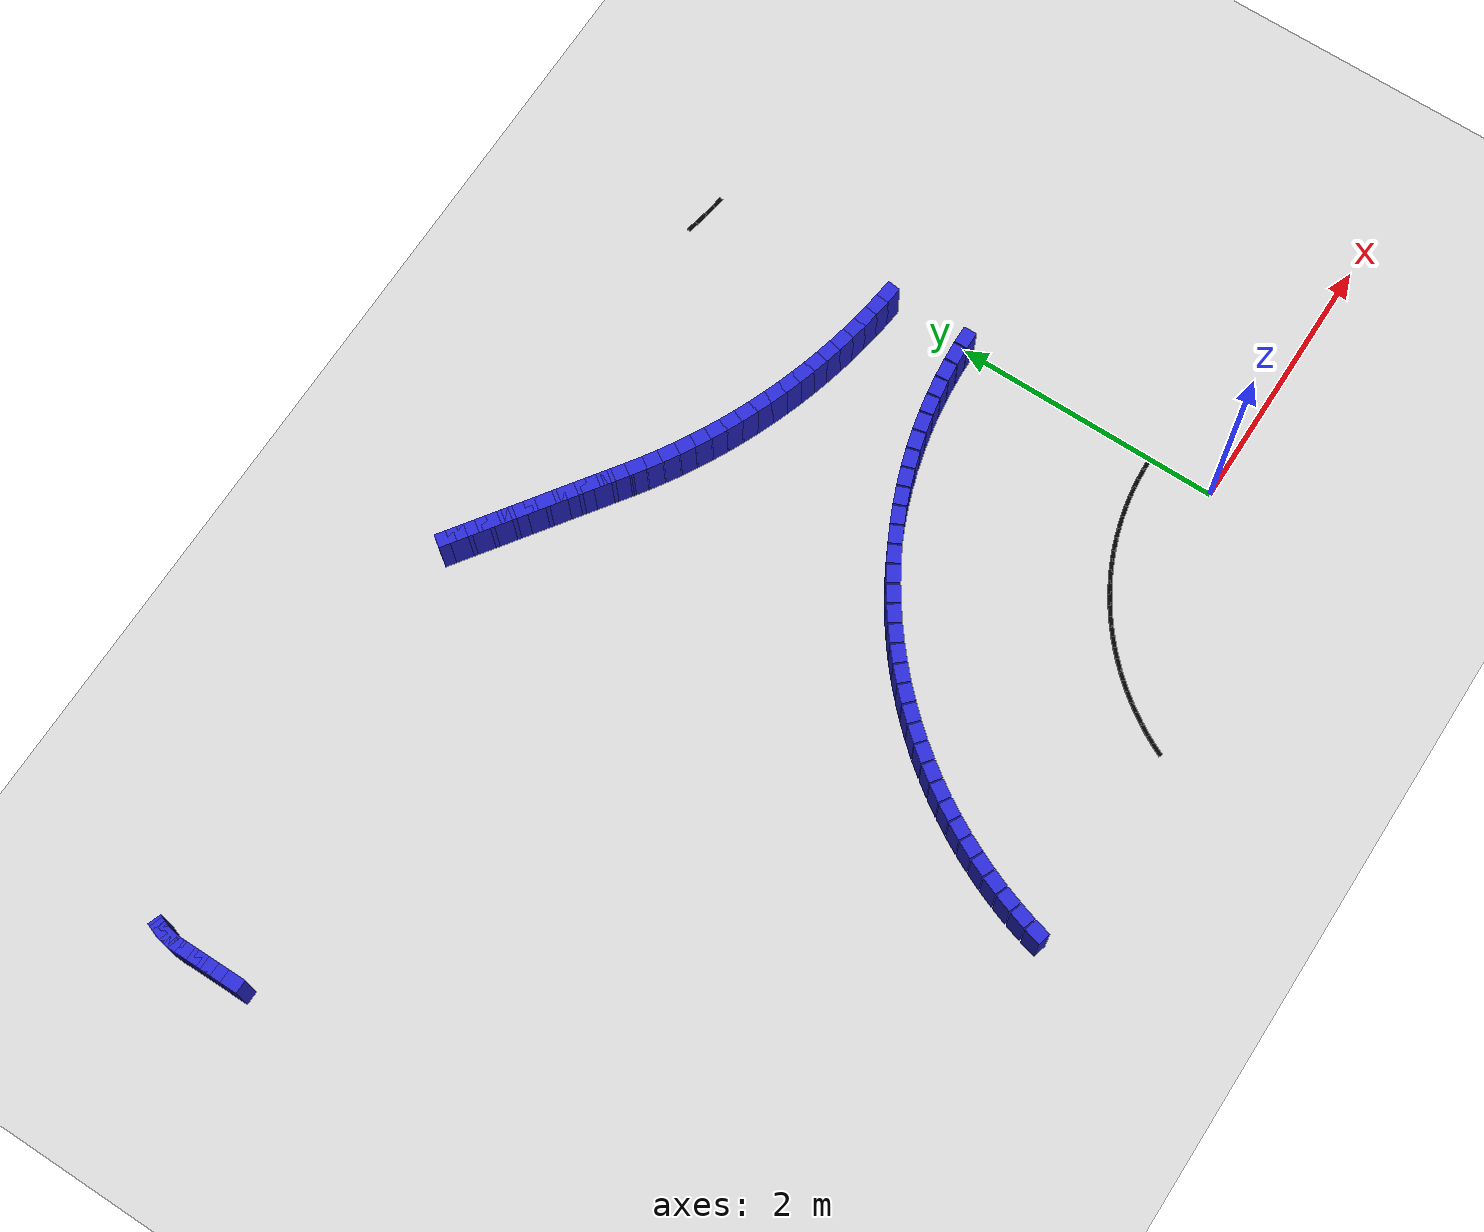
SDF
<sdf version="1.6">
 <world name="new_race_track">
  <include><uri>model://ground_plane</uri></include>
  <include><uri>model://sun</uri></include>
  <model name="iw_190">
   <static>true</static>
   <pose>-3.3803 -0.6142 0.200 0 0 1.3090</pose>
   <link name="l">
    <collision name="c"><geometry><box><size>0.1305 0.1 0.4</size></box></geometry></collision>
    <visual name="v">
     <geometry><box><size>0.1305 0.1 0.4</size></box></geometry>
     <material><ambient>0.15 0.15 0.8 1</ambient><diffuse>0.15 0.15 0.8 1</diffuse></material>
    </visual>
   </link>
  </model>
  <model name="iw_191">
   <static>true</static>
   <pose>-3.3411 -0.4789 0.200 0 0 1.2687</pose>
   <link name="l">
    <collision name="c"><geometry><box><size>0.1305 0.1 0.4</size></box></geometry></collision>
    <visual name="v">
     <geometry><box><size>0.1305 0.1 0.4</size></box></geometry>
     <material><ambient>0.15 0.15 0.8 1</ambient><diffuse>0.15 0.15 0.8 1</diffuse></material>
    </visual>
   </link>
  </model>
  <model name="iw_192">
   <static>true</static>
   <pose>-3.2965 -0.3452 0.200 0 0 1.2284</pose>
   <link name="l">
    <collision name="c"><geometry><box><size>0.1305 0.1 0.4</size></box></geometry></collision>
    <visual name="v">
     <geometry><box><size>0.1305 0.1 0.4</size></box></geometry>
     <material><ambient>0.15 0.15 0.8 1</ambient><diffuse>0.15 0.15 0.8 1</diffuse></material>
    </visual>
   </link>
  </model>
  <model name="iw_193">
   <static>true</static>
   <pose>-3.2465 -0.2134 0.200 0 0 1.1882</pose>
   <link name="l">
    <collision name="c"><geometry><box><size>0.1305 0.1 0.4</size></box></geometry></collision>
    <visual name="v">
     <geometry><box><size>0.1305 0.1 0.4</size></box></geometry>
     <material><ambient>0.15 0.15 0.8 1</ambient><diffuse>0.15 0.15 0.8 1</diffuse></material>
    </visual>
   </link>
  </model>
  <model name="iw_194">
   <static>true</static>
   <pose>-3.1913 -0.0837 0.200 0 0 1.1479</pose>
   <link name="l">
    <collision name="c"><geometry><box><size>0.1305 0.1 0.4</size></box></geometry></collision>
    <visual name="v">
     <geometry><box><size>0.1305 0.1 0.4</size></box></geometry>
     <material><ambient>0.15 0.15 0.8 1</ambient><diffuse>0.15 0.15 0.8 1</diffuse></material>
    </visual>
   </link>
  </model>
  <model name="iw_195">
   <static>true</static>
   <pose>-3.1309 0.0436 0.200 0 0 1.1076</pose>
   <link name="l">
    <collision name="c"><geometry><box><size>0.1305 0.1 0.4</size></box></geometry></collision>
    <visual name="v">
     <geometry><box><size>0.1305 0.1 0.4</size></box></geometry>
     <material><ambient>0.15 0.15 0.8 1</ambient><diffuse>0.15 0.15 0.8 1</diffuse></material>
    </visual>
   </link>
  </model>
  <model name="iw_196">
   <static>true</static>
   <pose>-3.0654 0.1684 0.200 0 0 1.0673</pose>
   <link name="l">
    <collision name="c"><geometry><box><size>0.1305 0.1 0.4</size></box></geometry></collision>
    <visual name="v">
     <geometry><box><size>0.1305 0.1 0.4</size></box></geometry>
     <material><ambient>0.15 0.15 0.8 1</ambient><diffuse>0.15 0.15 0.8 1</diffuse></material>
    </visual>
   </link>
  </model>
  <model name="iw_197">
   <static>true</static>
   <pose>-2.9949 0.2905 0.200 0 0 1.0271</pose>
   <link name="l">
    <collision name="c"><geometry><box><size>0.1305 0.1 0.4</size></box></geometry></collision>
    <visual name="v">
     <geometry><box><size>0.1305 0.1 0.4</size></box></geometry>
     <material><ambient>0.15 0.15 0.8 1</ambient><diffuse>0.15 0.15 0.8 1</diffuse></material>
    </visual>
   </link>
  </model>
  <model name="iw_198">
   <static>true</static>
   <pose>-2.9196 0.4096 0.200 0 0 0.9868</pose>
   <link name="l">
    <collision name="c"><geometry><box><size>0.1305 0.1 0.4</size></box></geometry></collision>
    <visual name="v">
     <geometry><box><size>0.1305 0.1 0.4</size></box></geometry>
     <material><ambient>0.15 0.15 0.8 1</ambient><diffuse>0.15 0.15 0.8 1</diffuse></material>
    </visual>
   </link>
  </model>
  <model name="iw_199">
   <static>true</static>
   <pose>-2.8395 0.5256 0.200 0 0 0.9465</pose>
   <link name="l">
    <collision name="c"><geometry><box><size>0.1305 0.1 0.4</size></box></geometry></collision>
    <visual name="v">
     <geometry><box><size>0.1305 0.1 0.4</size></box></geometry>
     <material><ambient>0.15 0.15 0.8 1</ambient><diffuse>0.15 0.15 0.8 1</diffuse></material>
    </visual>
   </link>
  </model>
  <model name="iw_200">
   <static>true</static>
   <pose>-2.7548 0.6383 0.200 0 0 0.9062</pose>
   <link name="l">
    <collision name="c"><geometry><box><size>0.1305 0.1 0.4</size></box></geometry></collision>
    <visual name="v">
     <geometry><box><size>0.1305 0.1 0.4</size></box></geometry>
     <material><ambient>0.15 0.15 0.8 1</ambient><diffuse>0.15 0.15 0.8 1</diffuse></material>
    </visual>
   </link>
  </model>
  <model name="iw_201">
   <static>true</static>
   <pose>-2.6657 0.7474 0.200 0 0 0.8660</pose>
   <link name="l">
    <collision name="c"><geometry><box><size>0.1305 0.1 0.4</size></box></geometry></collision>
    <visual name="v">
     <geometry><box><size>0.1305 0.1 0.4</size></box></geometry>
     <material><ambient>0.15 0.15 0.8 1</ambient><diffuse>0.15 0.15 0.8 1</diffuse></material>
    </visual>
   </link>
  </model>
  <model name="iw_202">
   <static>true</static>
   <pose>-2.5722 0.8529 0.200 0 0 0.8257</pose>
   <link name="l">
    <collision name="c"><geometry><box><size>0.1305 0.1 0.4</size></box></geometry></collision>
    <visual name="v">
     <geometry><box><size>0.1305 0.1 0.4</size></box></geometry>
     <material><ambient>0.15 0.15 0.8 1</ambient><diffuse>0.15 0.15 0.8 1</diffuse></material>
    </visual>
   </link>
  </model>
  <model name="iw_203">
   <static>true</static>
   <pose>-2.4746 0.9546 0.200 0 0 0.7854</pose>
   <link name="l">
    <collision name="c"><geometry><box><size>0.1305 0.1 0.4</size></box></geometry></collision>
    <visual name="v">
     <geometry><box><size>0.1305 0.1 0.4</size></box></geometry>
     <material><ambient>0.15 0.15 0.8 1</ambient><diffuse>0.15 0.15 0.8 1</diffuse></material>
    </visual>
   </link>
  </model>
  <model name="iw_204">
   <static>true</static>
   <pose>-2.3729 1.0522 0.200 0 0 0.7451</pose>
   <link name="l">
    <collision name="c"><geometry><box><size>0.1305 0.1 0.4</size></box></geometry></collision>
    <visual name="v">
     <geometry><box><size>0.1305 0.1 0.4</size></box></geometry>
     <material><ambient>0.15 0.15 0.8 1</ambient><diffuse>0.15 0.15 0.8 1</diffuse></material>
    </visual>
   </link>
  </model>
  <model name="iw_205">
   <static>true</static>
   <pose>-2.2674 1.1457 0.200 0 0 0.7048</pose>
   <link name="l">
    <collision name="c"><geometry><box><size>0.1305 0.1 0.4</size></box></geometry></collision>
    <visual name="v">
     <geometry><box><size>0.1305 0.1 0.4</size></box></geometry>
     <material><ambient>0.15 0.15 0.8 1</ambient><diffuse>0.15 0.15 0.8 1</diffuse></material>
    </visual>
   </link>
  </model>
  <model name="iw_206">
   <static>true</static>
   <pose>-2.1583 1.2348 0.200 0 0 0.6646</pose>
   <link name="l">
    <collision name="c"><geometry><box><size>0.1305 0.1 0.4</size></box></geometry></collision>
    <visual name="v">
     <geometry><box><size>0.1305 0.1 0.4</size></box></geometry>
     <material><ambient>0.15 0.15 0.8 1</ambient><diffuse>0.15 0.15 0.8 1</diffuse></material>
    </visual>
   </link>
  </model>
  <model name="iw_207">
   <static>true</static>
   <pose>-2.0456 1.3195 0.200 0 0 0.6243</pose>
   <link name="l">
    <collision name="c"><geometry><box><size>0.1305 0.1 0.4</size></box></geometry></collision>
    <visual name="v">
     <geometry><box><size>0.1305 0.1 0.4</size></box></geometry>
     <material><ambient>0.15 0.15 0.8 1</ambient><diffuse>0.15 0.15 0.8 1</diffuse></material>
    </visual>
   </link>
  </model>
  <model name="iw_208">
   <static>true</static>
   <pose>-1.9296 1.3996 0.200 0 0 0.5840</pose>
   <link name="l">
    <collision name="c"><geometry><box><size>0.1305 0.1 0.4</size></box></geometry></collision>
    <visual name="v">
     <geometry><box><size>0.1305 0.1 0.4</size></box></geometry>
     <material><ambient>0.15 0.15 0.8 1</ambient><diffuse>0.15 0.15 0.8 1</diffuse></material>
    </visual>
   </link>
  </model>
  <model name="iw_209">
   <static>true</static>
   <pose>-1.8105 1.4749 0.200 0 0 0.5437</pose>
   <link name="l">
    <collision name="c"><geometry><box><size>0.1305 0.1 0.4</size></box></geometry></collision>
    <visual name="v">
     <geometry><box><size>0.1305 0.1 0.4</size></box></geometry>
     <material><ambient>0.15 0.15 0.8 1</ambient><diffuse>0.15 0.15 0.8 1</diffuse></material>
    </visual>
   </link>
  </model>
  <model name="iw_210">
   <static>true</static>
   <pose>-1.6884 1.5454 0.200 0 0 0.5035</pose>
   <link name="l">
    <collision name="c"><geometry><box><size>0.1305 0.1 0.4</size></box></geometry></collision>
    <visual name="v">
     <geometry><box><size>0.1305 0.1 0.4</size></box></geometry>
     <material><ambient>0.15 0.15 0.8 1</ambient><diffuse>0.15 0.15 0.8 1</diffuse></material>
    </visual>
   </link>
  </model>
  <model name="iw_211">
   <static>true</static>
   <pose>-1.5636 1.6109 0.200 0 0 0.4632</pose>
   <link name="l">
    <collision name="c"><geometry><box><size>0.1305 0.1 0.4</size></box></geometry></collision>
    <visual name="v">
     <geometry><box><size>0.1305 0.1 0.4</size></box></geometry>
     <material><ambient>0.15 0.15 0.8 1</ambient><diffuse>0.15 0.15 0.8 1</diffuse></material>
    </visual>
   </link>
  </model>
  <model name="iw_212">
   <static>true</static>
   <pose>-1.4363 1.6713 0.200 0 0 0.4229</pose>
   <link name="l">
    <collision name="c"><geometry><box><size>0.1305 0.1 0.4</size></box></geometry></collision>
    <visual name="v">
     <geometry><box><size>0.1305 0.1 0.4</size></box></geometry>
     <material><ambient>0.15 0.15 0.8 1</ambient><diffuse>0.15 0.15 0.8 1</diffuse></material>
    </visual>
   </link>
  </model>
  <model name="iw_213">
   <static>true</static>
   <pose>-1.3066 1.7265 0.200 0 0 0.3826</pose>
   <link name="l">
    <collision name="c"><geometry><box><size>0.1305 0.1 0.4</size></box></geometry></collision>
    <visual name="v">
     <geometry><box><size>0.1305 0.1 0.4</size></box></geometry>
     <material><ambient>0.15 0.15 0.8 1</ambient><diffuse>0.15 0.15 0.8 1</diffuse></material>
    </visual>
   </link>
  </model>
  <model name="iw_214">
   <static>true</static>
   <pose>-1.1748 1.7765 0.200 0 0 0.3424</pose>
   <link name="l">
    <collision name="c"><geometry><box><size>0.1305 0.1 0.4</size></box></geometry></collision>
    <visual name="v">
     <geometry><box><size>0.1305 0.1 0.4</size></box></geometry>
     <material><ambient>0.15 0.15 0.8 1</ambient><diffuse>0.15 0.15 0.8 1</diffuse></material>
    </visual>
   </link>
  </model>
  <model name="iw_215">
   <static>true</static>
   <pose>-1.0411 1.8211 0.200 0 0 0.3021</pose>
   <link name="l">
    <collision name="c"><geometry><box><size>0.1305 0.1 0.4</size></box></geometry></collision>
    <visual name="v">
     <geometry><box><size>0.1305 0.1 0.4</size></box></geometry>
     <material><ambient>0.15 0.15 0.8 1</ambient><diffuse>0.15 0.15 0.8 1</diffuse></material>
    </visual>
   </link>
  </model>
  <model name="iw_216">
   <static>true</static>
   <pose>-0.9058 1.8603 0.200 0 0 0.2618</pose>
   <link name="l">
    <collision name="c"><geometry><box><size>0.1305 0.1 0.4</size></box></geometry></collision>
    <visual name="v">
     <geometry><box><size>0.1305 0.1 0.4</size></box></geometry>
     <material><ambient>0.15 0.15 0.8 1</ambient><diffuse>0.15 0.15 0.8 1</diffuse></material>
    </visual>
   </link>
  </model>
  <model name="iw_217">
   <static>true</static>
   <pose>-0.7689 1.8941 0.200 0 0 0.2215</pose>
   <link name="l">
    <collision name="c"><geometry><box><size>0.1305 0.1 0.4</size></box></geometry></collision>
    <visual name="v">
     <geometry><box><size>0.1305 0.1 0.4</size></box></geometry>
     <material><ambient>0.15 0.15 0.8 1</ambient><diffuse>0.15 0.15 0.8 1</diffuse></material>
    </visual>
   </link>
  </model>
  <model name="iw_218">
   <static>true</static>
   <pose>-0.6308 1.9223 0.200 0 0 0.1812</pose>
   <link name="l">
    <collision name="c"><geometry><box><size>0.1305 0.1 0.4</size></box></geometry></collision>
    <visual name="v">
     <geometry><box><size>0.1305 0.1 0.4</size></box></geometry>
     <material><ambient>0.15 0.15 0.8 1</ambient><diffuse>0.15 0.15 0.8 1</diffuse></material>
    </visual>
   </link>
  </model>
  <model name="iw_219">
   <static>true</static>
   <pose>-0.4917 1.9449 0.200 0 0 0.1410</pose>
   <link name="l">
    <collision name="c"><geometry><box><size>0.1305 0.1 0.4</size></box></geometry></collision>
    <visual name="v">
     <geometry><box><size>0.1305 0.1 0.4</size></box></geometry>
     <material><ambient>0.15 0.15 0.8 1</ambient><diffuse>0.15 0.15 0.8 1</diffuse></material>
    </visual>
   </link>
  </model>
  <model name="iw_220">
   <static>true</static>
   <pose>-0.3518 1.9619 0.200 0 0 0.1007</pose>
   <link name="l">
    <collision name="c"><geometry><box><size>0.1305 0.1 0.4</size></box></geometry></collision>
    <visual name="v">
     <geometry><box><size>0.1305 0.1 0.4</size></box></geometry>
     <material><ambient>0.15 0.15 0.8 1</ambient><diffuse>0.15 0.15 0.8 1</diffuse></material>
    </visual>
   </link>
  </model>
  <model name="iw_221">
   <static>true</static>
   <pose>-0.2113 1.9732 0.200 0 0 0.0604</pose>
   <link name="l">
    <collision name="c"><geometry><box><size>0.1305 0.1 0.4</size></box></geometry></collision>
    <visual name="v">
     <geometry><box><size>0.1305 0.1 0.4</size></box></geometry>
     <material><ambient>0.15 0.15 0.8 1</ambient><diffuse>0.15 0.15 0.8 1</diffuse></material>
    </visual>
   </link>
  </model>
  <model name="iw_222">
   <static>true</static>
   <pose>-0.0705 1.9789 0.200 0 0 0.0201</pose>
   <link name="l">
    <collision name="c"><geometry><box><size>0.1305 0.1 0.4</size></box></geometry></collision>
    <visual name="v">
     <geometry><box><size>0.1305 0.1 0.4</size></box></geometry>
     <material><ambient>0.15 0.15 0.8 1</ambient><diffuse>0.15 0.15 0.8 1</diffuse></material>
    </visual>
   </link>
  </model>
  <model name="iw_613">
   <static>true</static>
   <pose>-0.0687 2.6157 0.200 0 0 3.0330</pose>
   <link name="l">
    <collision name="c"><geometry><box><size>0.1314 0.1 0.4</size></box></geometry></collision>
    <visual name="v">
     <geometry><box><size>0.1314 0.1 0.4</size></box></geometry>
     <material><ambient>0.15 0.15 0.8 1</ambient><diffuse>0.15 0.15 0.8 1</diffuse></material>
    </visual>
   </link>
  </model>
  <model name="iw_614">
   <static>true</static>
   <pose>-0.1900 2.6306 0.200 0 0 3.0058</pose>
   <link name="l">
    <collision name="c"><geometry><box><size>0.1314 0.1 0.4</size></box></geometry></collision>
    <visual name="v">
     <geometry><box><size>0.1314 0.1 0.4</size></box></geometry>
     <material><ambient>0.15 0.15 0.8 1</ambient><diffuse>0.15 0.15 0.8 1</diffuse></material>
    </visual>
   </link>
  </model>
  <model name="iw_615">
   <static>true</static>
   <pose>-0.3108 2.6488 0.200 0 0 2.9787</pose>
   <link name="l">
    <collision name="c"><geometry><box><size>0.1314 0.1 0.4</size></box></geometry></collision>
    <visual name="v">
     <geometry><box><size>0.1314 0.1 0.4</size></box></geometry>
     <material><ambient>0.15 0.15 0.8 1</ambient><diffuse>0.15 0.15 0.8 1</diffuse></material>
    </visual>
   </link>
  </model>
  <model name="iw_616">
   <static>true</static>
   <pose>-0.4311 2.6703 0.200 0 0 2.9515</pose>
   <link name="l">
    <collision name="c"><geometry><box><size>0.1314 0.1 0.4</size></box></geometry></collision>
    <visual name="v">
     <geometry><box><size>0.1314 0.1 0.4</size></box></geometry>
     <material><ambient>0.15 0.15 0.8 1</ambient><diffuse>0.15 0.15 0.8 1</diffuse></material>
    </visual>
   </link>
  </model>
  <model name="iw_617">
   <static>true</static>
   <pose>-0.5507 2.6950 0.200 0 0 2.9244</pose>
   <link name="l">
    <collision name="c"><geometry><box><size>0.1314 0.1 0.4</size></box></geometry></collision>
    <visual name="v">
     <geometry><box><size>0.1314 0.1 0.4</size></box></geometry>
     <material><ambient>0.15 0.15 0.8 1</ambient><diffuse>0.15 0.15 0.8 1</diffuse></material>
    </visual>
   </link>
  </model>
  <model name="iw_618">
   <static>true</static>
   <pose>-0.6696 2.7229 0.200 0 0 2.8972</pose>
   <link name="l">
    <collision name="c"><geometry><box><size>0.1314 0.1 0.4</size></box></geometry></collision>
    <visual name="v">
     <geometry><box><size>0.1314 0.1 0.4</size></box></geometry>
     <material><ambient>0.15 0.15 0.8 1</ambient><diffuse>0.15 0.15 0.8 1</diffuse></material>
    </visual>
   </link>
  </model>
  <model name="iw_619">
   <static>true</static>
   <pose>-0.7877 2.7541 0.200 0 0 2.8701</pose>
   <link name="l">
    <collision name="c"><geometry><box><size>0.1314 0.1 0.4</size></box></geometry></collision>
    <visual name="v">
     <geometry><box><size>0.1314 0.1 0.4</size></box></geometry>
     <material><ambient>0.15 0.15 0.8 1</ambient><diffuse>0.15 0.15 0.8 1</diffuse></material>
    </visual>
   </link>
  </model>
  <model name="iw_620">
   <static>true</static>
   <pose>-0.9050 2.7884 0.200 0 0 2.8429</pose>
   <link name="l">
    <collision name="c"><geometry><box><size>0.1314 0.1 0.4</size></box></geometry></collision>
    <visual name="v">
     <geometry><box><size>0.1314 0.1 0.4</size></box></geometry>
     <material><ambient>0.15 0.15 0.8 1</ambient><diffuse>0.15 0.15 0.8 1</diffuse></material>
    </visual>
   </link>
  </model>
  <model name="iw_621">
   <static>true</static>
   <pose>-1.0212 2.8259 0.200 0 0 2.8158</pose>
   <link name="l">
    <collision name="c"><geometry><box><size>0.1314 0.1 0.4</size></box></geometry></collision>
    <visual name="v">
     <geometry><box><size>0.1314 0.1 0.4</size></box></geometry>
     <material><ambient>0.15 0.15 0.8 1</ambient><diffuse>0.15 0.15 0.8 1</diffuse></material>
    </visual>
   </link>
  </model>
  <model name="iw_622">
   <static>true</static>
   <pose>-1.1364 2.8666 0.200 0 0 2.7886</pose>
   <link name="l">
    <collision name="c"><geometry><box><size>0.1314 0.1 0.4</size></box></geometry></collision>
    <visual name="v">
     <geometry><box><size>0.1314 0.1 0.4</size></box></geometry>
     <material><ambient>0.15 0.15 0.8 1</ambient><diffuse>0.15 0.15 0.8 1</diffuse></material>
    </visual>
   </link>
  </model>
  <model name="iw_623">
   <static>true</static>
   <pose>-1.2505 2.9104 0.200 0 0 2.7615</pose>
   <link name="l">
    <collision name="c"><geometry><box><size>0.1314 0.1 0.4</size></box></geometry></collision>
    <visual name="v">
     <geometry><box><size>0.1314 0.1 0.4</size></box></geometry>
     <material><ambient>0.15 0.15 0.8 1</ambient><diffuse>0.15 0.15 0.8 1</diffuse></material>
    </visual>
   </link>
  </model>
  <model name="iw_624">
   <static>true</static>
   <pose>-1.3633 2.9572 0.200 0 0 2.7343</pose>
   <link name="l">
    <collision name="c"><geometry><box><size>0.1314 0.1 0.4</size></box></geometry></collision>
    <visual name="v">
     <geometry><box><size>0.1314 0.1 0.4</size></box></geometry>
     <material><ambient>0.15 0.15 0.8 1</ambient><diffuse>0.15 0.15 0.8 1</diffuse></material>
    </visual>
   </link>
  </model>
  <model name="iw_625">
   <static>true</static>
   <pose>-1.4748 3.0071 0.200 0 0 2.7072</pose>
   <link name="l">
    <collision name="c"><geometry><box><size>0.1314 0.1 0.4</size></box></geometry></collision>
    <visual name="v">
     <geometry><box><size>0.1314 0.1 0.4</size></box></geometry>
     <material><ambient>0.15 0.15 0.8 1</ambient><diffuse>0.15 0.15 0.8 1</diffuse></material>
    </visual>
   </link>
  </model>
  <model name="iw_626">
   <static>true</static>
   <pose>-1.5849 3.0601 0.200 0 0 2.6801</pose>
   <link name="l">
    <collision name="c"><geometry><box><size>0.1314 0.1 0.4</size></box></geometry></collision>
    <visual name="v">
     <geometry><box><size>0.1314 0.1 0.4</size></box></geometry>
     <material><ambient>0.15 0.15 0.8 1</ambient><diffuse>0.15 0.15 0.8 1</diffuse></material>
    </visual>
   </link>
  </model>
  <model name="iw_627">
   <static>true</static>
   <pose>-1.6935 3.1159 0.200 0 0 2.6529</pose>
   <link name="l">
    <collision name="c"><geometry><box><size>0.1314 0.1 0.4</size></box></geometry></collision>
    <visual name="v">
     <geometry><box><size>0.1314 0.1 0.4</size></box></geometry>
     <material><ambient>0.15 0.15 0.8 1</ambient><diffuse>0.15 0.15 0.8 1</diffuse></material>
    </visual>
   </link>
  </model>
  <model name="iw_628">
   <static>true</static>
   <pose>-1.8006 3.1748 0.200 0 0 2.6258</pose>
   <link name="l">
    <collision name="c"><geometry><box><size>0.1314 0.1 0.4</size></box></geometry></collision>
    <visual name="v">
     <geometry><box><size>0.1314 0.1 0.4</size></box></geometry>
     <material><ambient>0.15 0.15 0.8 1</ambient><diffuse>0.15 0.15 0.8 1</diffuse></material>
    </visual>
   </link>
  </model>
  <model name="iw_629">
   <static>true</static>
   <pose>-1.9060 3.2364 0.200 0 0 2.5986</pose>
   <link name="l">
    <collision name="c"><geometry><box><size>0.1314 0.1 0.4</size></box></geometry></collision>
    <visual name="v">
     <geometry><box><size>0.1314 0.1 0.4</size></box></geometry>
     <material><ambient>0.15 0.15 0.8 1</ambient><diffuse>0.15 0.15 0.8 1</diffuse></material>
    </visual>
   </link>
  </model>
  <model name="iw_630">
   <static>true</static>
   <pose>-2.0098 3.3010 0.200 0 0 2.5715</pose>
   <link name="l">
    <collision name="c"><geometry><box><size>0.1314 0.1 0.4</size></box></geometry></collision>
    <visual name="v">
     <geometry><box><size>0.1314 0.1 0.4</size></box></geometry>
     <material><ambient>0.15 0.15 0.8 1</ambient><diffuse>0.15 0.15 0.8 1</diffuse></material>
    </visual>
   </link>
  </model>
  <model name="iw_631">
   <static>true</static>
   <pose>-2.1117 3.3683 0.200 0 0 2.5443</pose>
   <link name="l">
    <collision name="c"><geometry><box><size>0.1314 0.1 0.4</size></box></geometry></collision>
    <visual name="v">
     <geometry><box><size>0.1314 0.1 0.4</size></box></geometry>
     <material><ambient>0.15 0.15 0.8 1</ambient><diffuse>0.15 0.15 0.8 1</diffuse></material>
    </visual>
   </link>
  </model>
  <model name="iw_632">
   <static>true</static>
   <pose>-2.1949 3.4257 0.200 0 0 2.5307</pose>
   <link name="l">
    <collision name="c"><geometry><box><size>0.1300 0.1 0.4</size></box></geometry></collision>
    <visual name="v">
     <geometry><box><size>0.1300 0.1 0.4</size></box></geometry>
     <material><ambient>0.15 0.15 0.8 1</ambient><diffuse>0.15 0.15 0.8 1</diffuse></material>
    </visual>
   </link>
  </model>
  <model name="iw_633">
   <static>true</static>
   <pose>-2.2604 3.4716 0.200 0 0 2.5307</pose>
   <link name="l">
    <collision name="c"><geometry><box><size>0.1300 0.1 0.4</size></box></geometry></collision>
    <visual name="v">
     <geometry><box><size>0.1300 0.1 0.4</size></box></geometry>
     <material><ambient>0.15 0.15 0.8 1</ambient><diffuse>0.15 0.15 0.8 1</diffuse></material>
    </visual>
   </link>
  </model>
  <model name="iw_634">
   <static>true</static>
   <pose>-2.3260 3.5175 0.200 0 0 2.5307</pose>
   <link name="l">
    <collision name="c"><geometry><box><size>0.1300 0.1 0.4</size></box></geometry></collision>
    <visual name="v">
     <geometry><box><size>0.1300 0.1 0.4</size></box></geometry>
     <material><ambient>0.15 0.15 0.8 1</ambient><diffuse>0.15 0.15 0.8 1</diffuse></material>
    </visual>
   </link>
  </model>
  <model name="iw_635">
   <static>true</static>
   <pose>-2.3915 3.5634 0.200 0 0 2.5307</pose>
   <link name="l">
    <collision name="c"><geometry><box><size>0.1300 0.1 0.4</size></box></geometry></collision>
    <visual name="v">
     <geometry><box><size>0.1300 0.1 0.4</size></box></geometry>
     <material><ambient>0.15 0.15 0.8 1</ambient><diffuse>0.15 0.15 0.8 1</diffuse></material>
    </visual>
   </link>
  </model>
  <model name="iw_636">
   <static>true</static>
   <pose>-2.4570 3.6093 0.200 0 0 2.5307</pose>
   <link name="l">
    <collision name="c"><geometry><box><size>0.1300 0.1 0.4</size></box></geometry></collision>
    <visual name="v">
     <geometry><box><size>0.1300 0.1 0.4</size></box></geometry>
     <material><ambient>0.15 0.15 0.8 1</ambient><diffuse>0.15 0.15 0.8 1</diffuse></material>
    </visual>
   </link>
  </model>
  <model name="iw_637">
   <static>true</static>
   <pose>-2.5226 3.6552 0.200 0 0 2.5307</pose>
   <link name="l">
    <collision name="c"><geometry><box><size>0.1300 0.1 0.4</size></box></geometry></collision>
    <visual name="v">
     <geometry><box><size>0.1300 0.1 0.4</size></box></geometry>
     <material><ambient>0.15 0.15 0.8 1</ambient><diffuse>0.15 0.15 0.8 1</diffuse></material>
    </visual>
   </link>
  </model>
  <model name="iw_638">
   <static>true</static>
   <pose>-2.5881 3.7010 0.200 0 0 2.5307</pose>
   <link name="l">
    <collision name="c"><geometry><box><size>0.1300 0.1 0.4</size></box></geometry></collision>
    <visual name="v">
     <geometry><box><size>0.1300 0.1 0.4</size></box></geometry>
     <material><ambient>0.15 0.15 0.8 1</ambient><diffuse>0.15 0.15 0.8 1</diffuse></material>
    </visual>
   </link>
  </model>
  <model name="iw_639">
   <static>true</static>
   <pose>-2.6536 3.7469 0.200 0 0 2.5307</pose>
   <link name="l">
    <collision name="c"><geometry><box><size>0.1300 0.1 0.4</size></box></geometry></collision>
    <visual name="v">
     <geometry><box><size>0.1300 0.1 0.4</size></box></geometry>
     <material><ambient>0.15 0.15 0.8 1</ambient><diffuse>0.15 0.15 0.8 1</diffuse></material>
    </visual>
   </link>
  </model>
  <model name="iw_640">
   <static>true</static>
   <pose>-2.7192 3.7928 0.200 0 0 2.5307</pose>
   <link name="l">
    <collision name="c"><geometry><box><size>0.1300 0.1 0.4</size></box></geometry></collision>
    <visual name="v">
     <geometry><box><size>0.1300 0.1 0.4</size></box></geometry>
     <material><ambient>0.15 0.15 0.8 1</ambient><diffuse>0.15 0.15 0.8 1</diffuse></material>
    </visual>
   </link>
  </model>
  <model name="iw_641">
   <static>true</static>
   <pose>-2.7847 3.8387 0.200 0 0 2.5307</pose>
   <link name="l">
    <collision name="c"><geometry><box><size>0.1300 0.1 0.4</size></box></geometry></collision>
    <visual name="v">
     <geometry><box><size>0.1300 0.1 0.4</size></box></geometry>
     <material><ambient>0.15 0.15 0.8 1</ambient><diffuse>0.15 0.15 0.8 1</diffuse></material>
    </visual>
   </link>
  </model>
  <model name="iw_642">
   <static>true</static>
   <pose>-2.8502 3.8846 0.200 0 0 2.5307</pose>
   <link name="l">
    <collision name="c"><geometry><box><size>0.1300 0.1 0.4</size></box></geometry></collision>
    <visual name="v">
     <geometry><box><size>0.1300 0.1 0.4</size></box></geometry>
     <material><ambient>0.15 0.15 0.8 1</ambient><diffuse>0.15 0.15 0.8 1</diffuse></material>
    </visual>
   </link>
  </model>
  <model name="iw_643">
   <static>true</static>
   <pose>-2.9158 3.9305 0.200 0 0 2.5307</pose>
   <link name="l">
    <collision name="c"><geometry><box><size>0.1300 0.1 0.4</size></box></geometry></collision>
    <visual name="v">
     <geometry><box><size>0.1300 0.1 0.4</size></box></geometry>
     <material><ambient>0.15 0.15 0.8 1</ambient><diffuse>0.15 0.15 0.8 1</diffuse></material>
    </visual>
   </link>
  </model>
  <model name="iw_644">
   <static>true</static>
   <pose>-2.9813 3.9764 0.200 0 0 2.5307</pose>
   <link name="l">
    <collision name="c"><geometry><box><size>0.1300 0.1 0.4</size></box></geometry></collision>
    <visual name="v">
     <geometry><box><size>0.1300 0.1 0.4</size></box></geometry>
     <material><ambient>0.15 0.15 0.8 1</ambient><diffuse>0.15 0.15 0.8 1</diffuse></material>
    </visual>
   </link>
  </model>
  <model name="iw_645">
   <static>true</static>
   <pose>-3.0468 4.0222 0.200 0 0 2.5307</pose>
   <link name="l">
    <collision name="c"><geometry><box><size>0.1300 0.1 0.4</size></box></geometry></collision>
    <visual name="v">
     <geometry><box><size>0.1300 0.1 0.4</size></box></geometry>
     <material><ambient>0.15 0.15 0.8 1</ambient><diffuse>0.15 0.15 0.8 1</diffuse></material>
    </visual>
   </link>
  </model>
  <model name="iw_646">
   <static>true</static>
   <pose>-3.1123 4.0681 0.200 0 0 2.5307</pose>
   <link name="l">
    <collision name="c"><geometry><box><size>0.1300 0.1 0.4</size></box></geometry></collision>
    <visual name="v">
     <geometry><box><size>0.1300 0.1 0.4</size></box></geometry>
     <material><ambient>0.15 0.15 0.8 1</ambient><diffuse>0.15 0.15 0.8 1</diffuse></material>
    </visual>
   </link>
  </model>
  <model name="iw_647">
   <static>true</static>
   <pose>-3.1779 4.1140 0.200 0 0 2.5307</pose>
   <link name="l">
    <collision name="c"><geometry><box><size>0.1300 0.1 0.4</size></box></geometry></collision>
    <visual name="v">
     <geometry><box><size>0.1300 0.1 0.4</size></box></geometry>
     <material><ambient>0.15 0.15 0.8 1</ambient><diffuse>0.15 0.15 0.8 1</diffuse></material>
    </visual>
   </link>
  </model>
  <model name="iw_648">
   <static>true</static>
   <pose>-3.2434 4.1599 0.200 0 0 2.5307</pose>
   <link name="l">
    <collision name="c"><geometry><box><size>0.1300 0.1 0.4</size></box></geometry></collision>
    <visual name="v">
     <geometry><box><size>0.1300 0.1 0.4</size></box></geometry>
     <material><ambient>0.15 0.15 0.8 1</ambient><diffuse>0.15 0.15 0.8 1</diffuse></material>
    </visual>
   </link>
  </model>
  <model name="iw_724">
   <static>true</static>
   <pose>-6.4327 4.1677 0.200 0 0 -1.9131</pose>
   <link name="l">
    <collision name="c"><geometry><box><size>0.1305 0.1 0.4</size></box></geometry></collision>
    <visual name="v">
     <geometry><box><size>0.1305 0.1 0.4</size></box></geometry>
     <material><ambient>0.15 0.15 0.8 1</ambient><diffuse>0.15 0.15 0.8 1</diffuse></material>
    </visual>
   </link>
  </model>
  <model name="iw_725">
   <static>true</static>
   <pose>-6.4390 4.1486 0.200 0 0 -1.8729</pose>
   <link name="l">
    <collision name="c"><geometry><box><size>0.1305 0.1 0.4</size></box></geometry></collision>
    <visual name="v">
     <geometry><box><size>0.1305 0.1 0.4</size></box></geometry>
     <material><ambient>0.15 0.15 0.8 1</ambient><diffuse>0.15 0.15 0.8 1</diffuse></material>
    </visual>
   </link>
  </model>
  <model name="iw_726">
   <static>true</static>
   <pose>-6.4446 4.1293 0.200 0 0 -1.8326</pose>
   <link name="l">
    <collision name="c"><geometry><box><size>0.1305 0.1 0.4</size></box></geometry></collision>
    <visual name="v">
     <geometry><box><size>0.1305 0.1 0.4</size></box></geometry>
     <material><ambient>0.15 0.15 0.8 1</ambient><diffuse>0.15 0.15 0.8 1</diffuse></material>
    </visual>
   </link>
  </model>
  <model name="iw_727">
   <static>true</static>
   <pose>-6.4495 4.1098 0.200 0 0 -1.7923</pose>
   <link name="l">
    <collision name="c"><geometry><box><size>0.1305 0.1 0.4</size></box></geometry></collision>
    <visual name="v">
     <geometry><box><size>0.1305 0.1 0.4</size></box></geometry>
     <material><ambient>0.15 0.15 0.8 1</ambient><diffuse>0.15 0.15 0.8 1</diffuse></material>
    </visual>
   </link>
  </model>
  <model name="iw_728">
   <static>true</static>
   <pose>-6.4535 4.0901 0.200 0 0 -1.7520</pose>
   <link name="l">
    <collision name="c"><geometry><box><size>0.1305 0.1 0.4</size></box></geometry></collision>
    <visual name="v">
     <geometry><box><size>0.1305 0.1 0.4</size></box></geometry>
     <material><ambient>0.15 0.15 0.8 1</ambient><diffuse>0.15 0.15 0.8 1</diffuse></material>
    </visual>
   </link>
  </model>
  <model name="iw_729">
   <static>true</static>
   <pose>-6.4567 4.0702 0.200 0 0 -1.7118</pose>
   <link name="l">
    <collision name="c"><geometry><box><size>0.1305 0.1 0.4</size></box></geometry></collision>
    <visual name="v">
     <geometry><box><size>0.1305 0.1 0.4</size></box></geometry>
     <material><ambient>0.15 0.15 0.8 1</ambient><diffuse>0.15 0.15 0.8 1</diffuse></material>
    </visual>
   </link>
  </model>
  <model name="iw_730">
   <static>true</static>
   <pose>-6.4591 4.0502 0.200 0 0 -1.6715</pose>
   <link name="l">
    <collision name="c"><geometry><box><size>0.1305 0.1 0.4</size></box></geometry></collision>
    <visual name="v">
     <geometry><box><size>0.1305 0.1 0.4</size></box></geometry>
     <material><ambient>0.15 0.15 0.8 1</ambient><diffuse>0.15 0.15 0.8 1</diffuse></material>
    </visual>
   </link>
  </model>
  <model name="iw_731">
   <static>true</static>
   <pose>-6.4608 4.0302 0.200 0 0 -1.6312</pose>
   <link name="l">
    <collision name="c"><geometry><box><size>0.1305 0.1 0.4</size></box></geometry></collision>
    <visual name="v">
     <geometry><box><size>0.1305 0.1 0.4</size></box></geometry>
     <material><ambient>0.15 0.15 0.8 1</ambient><diffuse>0.15 0.15 0.8 1</diffuse></material>
    </visual>
   </link>
  </model>
  <model name="iw_732">
   <static>true</static>
   <pose>-6.4616 4.0101 0.200 0 0 -1.5909</pose>
   <link name="l">
    <collision name="c"><geometry><box><size>0.1305 0.1 0.4</size></box></geometry></collision>
    <visual name="v">
     <geometry><box><size>0.1305 0.1 0.4</size></box></geometry>
     <material><ambient>0.15 0.15 0.8 1</ambient><diffuse>0.15 0.15 0.8 1</diffuse></material>
    </visual>
   </link>
  </model>
  <model name="iw_733">
   <static>true</static>
   <pose>-6.4621 3.9600 0.200 0 0 -1.5708</pose>
   <link name="l">
    <collision name="c"><geometry><box><size>0.1300 0.1 0.4</size></box></geometry></collision>
    <visual name="v">
     <geometry><box><size>0.1300 0.1 0.4</size></box></geometry>
     <material><ambient>0.15 0.15 0.8 1</ambient><diffuse>0.15 0.15 0.8 1</diffuse></material>
    </visual>
   </link>
  </model>
  <model name="iw_734">
   <static>true</static>
   <pose>-6.4621 3.8800 0.200 0 0 -1.5708</pose>
   <link name="l">
    <collision name="c"><geometry><box><size>0.1300 0.1 0.4</size></box></geometry></collision>
    <visual name="v">
     <geometry><box><size>0.1300 0.1 0.4</size></box></geometry>
     <material><ambient>0.15 0.15 0.8 1</ambient><diffuse>0.15 0.15 0.8 1</diffuse></material>
    </visual>
   </link>
  </model>
  <model name="iw_735">
   <static>true</static>
   <pose>-6.4621 3.8000 0.200 0 0 -1.5708</pose>
   <link name="l">
    <collision name="c"><geometry><box><size>0.1300 0.1 0.4</size></box></geometry></collision>
    <visual name="v">
     <geometry><box><size>0.1300 0.1 0.4</size></box></geometry>
     <material><ambient>0.15 0.15 0.8 1</ambient><diffuse>0.15 0.15 0.8 1</diffuse></material>
    </visual>
   </link>
  </model>
  <model name="iw_736">
   <static>true</static>
   <pose>-6.4621 3.7200 0.200 0 0 -1.5708</pose>
   <link name="l">
    <collision name="c"><geometry><box><size>0.1300 0.1 0.4</size></box></geometry></collision>
    <visual name="v">
     <geometry><box><size>0.1300 0.1 0.4</size></box></geometry>
     <material><ambient>0.15 0.15 0.8 1</ambient><diffuse>0.15 0.15 0.8 1</diffuse></material>
    </visual>
   </link>
  </model>
  <model name="iw_737">
   <static>true</static>
   <pose>-6.4621 3.6400 0.200 0 0 -1.5708</pose>
   <link name="l">
    <collision name="c"><geometry><box><size>0.1300 0.1 0.4</size></box></geometry></collision>
    <visual name="v">
     <geometry><box><size>0.1300 0.1 0.4</size></box></geometry>
     <material><ambient>0.15 0.15 0.8 1</ambient><diffuse>0.15 0.15 0.8 1</diffuse></material>
    </visual>
   </link>
  </model>
  <model name="iw_738">
   <static>true</static>
   <pose>-6.4621 3.5600 0.200 0 0 -1.5708</pose>
   <link name="l">
    <collision name="c"><geometry><box><size>0.1300 0.1 0.4</size></box></geometry></collision>
    <visual name="v">
     <geometry><box><size>0.1300 0.1 0.4</size></box></geometry>
     <material><ambient>0.15 0.15 0.8 1</ambient><diffuse>0.15 0.15 0.8 1</diffuse></material>
    </visual>
   </link>
  </model>
  <model name="line_195">
   <static>true</static>
   <pose>-1.7889 -0.6266 0.002 0 0 1.1076</pose>
   <link name="l">
    <visual name="v">
     <geometry><box><size>0.1005 0.03 0.002</size></box></geometry>
     <material><ambient>0 0 0 1</ambient><diffuse>0 0 0 1</diffuse></material>
    </visual>
   </link>
  </model>
  <model name="line_196">
   <static>true</static>
   <pose>-1.7515 -0.5553 0.002 0 0 1.0673</pose>
   <link name="l">
    <visual name="v">
     <geometry><box><size>0.1005 0.03 0.002</size></box></geometry>
     <material><ambient>0 0 0 1</ambient><diffuse>0 0 0 1</diffuse></material>
    </visual>
   </link>
  </model>
  <model name="line_197">
   <static>true</static>
   <pose>-1.7112 -0.4855 0.002 0 0 1.0271</pose>
   <link name="l">
    <visual name="v">
     <geometry><box><size>0.1005 0.03 0.002</size></box></geometry>
     <material><ambient>0 0 0 1</ambient><diffuse>0 0 0 1</diffuse></material>
    </visual>
   </link>
  </model>
  <model name="line_198">
   <static>true</static>
   <pose>-1.6682 -0.4175 0.002 0 0 0.9868</pose>
   <link name="l">
    <visual name="v">
     <geometry><box><size>0.1005 0.03 0.002</size></box></geometry>
     <material><ambient>0 0 0 1</ambient><diffuse>0 0 0 1</diffuse></material>
    </visual>
   </link>
  </model>
  <model name="line_199">
   <static>true</static>
   <pose>-1.6224 -0.3512 0.002 0 0 0.9465</pose>
   <link name="l">
    <visual name="v">
     <geometry><box><size>0.1005 0.03 0.002</size></box></geometry>
     <material><ambient>0 0 0 1</ambient><diffuse>0 0 0 1</diffuse></material>
    </visual>
   </link>
  </model>
  <model name="line_200">
   <static>true</static>
   <pose>-1.5740 -0.2868 0.002 0 0 0.9062</pose>
   <link name="l">
    <visual name="v">
     <geometry><box><size>0.1005 0.03 0.002</size></box></geometry>
     <material><ambient>0 0 0 1</ambient><diffuse>0 0 0 1</diffuse></material>
    </visual>
   </link>
  </model>
  <model name="line_201">
   <static>true</static>
   <pose>-1.5231 -0.2244 0.002 0 0 0.8660</pose>
   <link name="l">
    <visual name="v">
     <geometry><box><size>0.1005 0.03 0.002</size></box></geometry>
     <material><ambient>0 0 0 1</ambient><diffuse>0 0 0 1</diffuse></material>
    </visual>
   </link>
  </model>
  <model name="line_202">
   <static>true</static>
   <pose>-1.4697 -0.1642 0.002 0 0 0.8257</pose>
   <link name="l">
    <visual name="v">
     <geometry><box><size>0.1005 0.03 0.002</size></box></geometry>
     <material><ambient>0 0 0 1</ambient><diffuse>0 0 0 1</diffuse></material>
    </visual>
   </link>
  </model>
  <model name="line_203">
   <static>true</static>
   <pose>-1.4139 -0.1061 0.002 0 0 0.7854</pose>
   <link name="l">
    <visual name="v">
     <geometry><box><size>0.1005 0.03 0.002</size></box></geometry>
     <material><ambient>0 0 0 1</ambient><diffuse>0 0 0 1</diffuse></material>
    </visual>
   </link>
  </model>
  <model name="line_204">
   <static>true</static>
   <pose>-1.3558 -0.0503 0.002 0 0 0.7451</pose>
   <link name="l">
    <visual name="v">
     <geometry><box><size>0.1005 0.03 0.002</size></box></geometry>
     <material><ambient>0 0 0 1</ambient><diffuse>0 0 0 1</diffuse></material>
    </visual>
   </link>
  </model>
  <model name="line_205">
   <static>true</static>
   <pose>-1.2956 0.0031 0.002 0 0 0.7048</pose>
   <link name="l">
    <visual name="v">
     <geometry><box><size>0.1005 0.03 0.002</size></box></geometry>
     <material><ambient>0 0 0 1</ambient><diffuse>0 0 0 1</diffuse></material>
    </visual>
   </link>
  </model>
  <model name="line_206">
   <static>true</static>
   <pose>-1.2332 0.0540 0.002 0 0 0.6646</pose>
   <link name="l">
    <visual name="v">
     <geometry><box><size>0.1005 0.03 0.002</size></box></geometry>
     <material><ambient>0 0 0 1</ambient><diffuse>0 0 0 1</diffuse></material>
    </visual>
   </link>
  </model>
  <model name="line_207">
   <static>true</static>
   <pose>-1.1688 0.1024 0.002 0 0 0.6243</pose>
   <link name="l">
    <visual name="v">
     <geometry><box><size>0.1005 0.03 0.002</size></box></geometry>
     <material><ambient>0 0 0 1</ambient><diffuse>0 0 0 1</diffuse></material>
    </visual>
   </link>
  </model>
  <model name="line_208">
   <static>true</static>
   <pose>-1.1025 0.1482 0.002 0 0 0.5840</pose>
   <link name="l">
    <visual name="v">
     <geometry><box><size>0.1005 0.03 0.002</size></box></geometry>
     <material><ambient>0 0 0 1</ambient><diffuse>0 0 0 1</diffuse></material>
    </visual>
   </link>
  </model>
  <model name="line_209">
   <static>true</static>
   <pose>-1.0345 0.1912 0.002 0 0 0.5437</pose>
   <link name="l">
    <visual name="v">
     <geometry><box><size>0.1005 0.03 0.002</size></box></geometry>
     <material><ambient>0 0 0 1</ambient><diffuse>0 0 0 1</diffuse></material>
    </visual>
   </link>
  </model>
  <model name="line_210">
   <static>true</static>
   <pose>-0.9647 0.2315 0.002 0 0 0.5035</pose>
   <link name="l">
    <visual name="v">
     <geometry><box><size>0.1005 0.03 0.002</size></box></geometry>
     <material><ambient>0 0 0 1</ambient><diffuse>0 0 0 1</diffuse></material>
    </visual>
   </link>
  </model>
  <model name="line_211">
   <static>true</static>
   <pose>-0.8934 0.2689 0.002 0 0 0.4632</pose>
   <link name="l">
    <visual name="v">
     <geometry><box><size>0.1005 0.03 0.002</size></box></geometry>
     <material><ambient>0 0 0 1</ambient><diffuse>0 0 0 1</diffuse></material>
    </visual>
   </link>
  </model>
  <model name="line_212">
   <static>true</static>
   <pose>-0.8207 0.3034 0.002 0 0 0.4229</pose>
   <link name="l">
    <visual name="v">
     <geometry><box><size>0.1005 0.03 0.002</size></box></geometry>
     <material><ambient>0 0 0 1</ambient><diffuse>0 0 0 1</diffuse></material>
    </visual>
   </link>
  </model>
  <model name="line_213">
   <static>true</static>
   <pose>-0.7466 0.3350 0.002 0 0 0.3826</pose>
   <link name="l">
    <visual name="v">
     <geometry><box><size>0.1005 0.03 0.002</size></box></geometry>
     <material><ambient>0 0 0 1</ambient><diffuse>0 0 0 1</diffuse></material>
    </visual>
   </link>
  </model>
  <model name="line_214">
   <static>true</static>
   <pose>-0.6713 0.3636 0.002 0 0 0.3424</pose>
   <link name="l">
    <visual name="v">
     <geometry><box><size>0.1005 0.03 0.002</size></box></geometry>
     <material><ambient>0 0 0 1</ambient><diffuse>0 0 0 1</diffuse></material>
    </visual>
   </link>
  </model>
  <model name="line_215">
   <static>true</static>
   <pose>-0.5949 0.3891 0.002 0 0 0.3021</pose>
   <link name="l">
    <visual name="v">
     <geometry><box><size>0.1005 0.03 0.002</size></box></geometry>
     <material><ambient>0 0 0 1</ambient><diffuse>0 0 0 1</diffuse></material>
    </visual>
   </link>
  </model>
  <model name="line_216">
   <static>true</static>
   <pose>-0.5175 0.4115 0.002 0 0 0.2618</pose>
   <link name="l">
    <visual name="v">
     <geometry><box><size>0.1005 0.03 0.002</size></box></geometry>
     <material><ambient>0 0 0 1</ambient><diffuse>0 0 0 1</diffuse></material>
    </visual>
   </link>
  </model>
  <model name="line_217">
   <static>true</static>
   <pose>-0.4393 0.4307 0.002 0 0 0.2215</pose>
   <link name="l">
    <visual name="v">
     <geometry><box><size>0.1005 0.03 0.002</size></box></geometry>
     <material><ambient>0 0 0 1</ambient><diffuse>0 0 0 1</diffuse></material>
    </visual>
   </link>
  </model>
  <model name="line_218">
   <static>true</static>
   <pose>-0.3604 0.4468 0.002 0 0 0.1812</pose>
   <link name="l">
    <visual name="v">
     <geometry><box><size>0.1005 0.03 0.002</size></box></geometry>
     <material><ambient>0 0 0 1</ambient><diffuse>0 0 0 1</diffuse></material>
    </visual>
   </link>
  </model>
  <model name="line_219">
   <static>true</static>
   <pose>-0.2809 0.4598 0.002 0 0 0.1410</pose>
   <link name="l">
    <visual name="v">
     <geometry><box><size>0.1005 0.03 0.002</size></box></geometry>
     <material><ambient>0 0 0 1</ambient><diffuse>0 0 0 1</diffuse></material>
    </visual>
   </link>
  </model>
  <model name="line_220">
   <static>true</static>
   <pose>-0.2010 0.4695 0.002 0 0 0.1007</pose>
   <link name="l">
    <visual name="v">
     <geometry><box><size>0.1005 0.03 0.002</size></box></geometry>
     <material><ambient>0 0 0 1</ambient><diffuse>0 0 0 1</diffuse></material>
    </visual>
   </link>
  </model>
  <model name="line_221">
   <static>true</static>
   <pose>-0.1207 0.4759 0.002 0 0 0.0604</pose>
   <link name="l">
    <visual name="v">
     <geometry><box><size>0.1005 0.03 0.002</size></box></geometry>
     <material><ambient>0 0 0 1</ambient><diffuse>0 0 0 1</diffuse></material>
    </visual>
   </link>
  </model>
  <model name="line_222">
   <static>true</static>
   <pose>-0.0403 0.4792 0.002 0 0 0.0201</pose>
   <link name="l">
    <visual name="v">
     <geometry><box><size>0.1005 0.03 0.002</size></box></geometry>
     <material><ambient>0 0 0 1</ambient><diffuse>0 0 0 1</diffuse></material>
    </visual>
   </link>
  </model>
  <model name="line_614">
   <static>true</static>
   <pose>0.0130 4.1168 0.002 0 0 3.0058</pose>
   <link name="l">
    <visual name="v">
     <geometry><box><size>0.1014 0.03 0.002</size></box></geometry>
     <material><ambient>0 0 0 1</ambient><diffuse>0 0 0 1</diffuse></material>
    </visual>
   </link>
  </model>
  <model name="line_615">
   <static>true</static>
   <pose>-0.0675 4.1290 0.002 0 0 2.9787</pose>
   <link name="l">
    <visual name="v">
     <geometry><box><size>0.1014 0.03 0.002</size></box></geometry>
     <material><ambient>0 0 0 1</ambient><diffuse>0 0 0 1</diffuse></material>
    </visual>
   </link>
  </model>
  <model name="line_616">
   <static>true</static>
   <pose>-0.1477 4.1432 0.002 0 0 2.9515</pose>
   <link name="l">
    <visual name="v">
     <geometry><box><size>0.1014 0.03 0.002</size></box></geometry>
     <material><ambient>0 0 0 1</ambient><diffuse>0 0 0 1</diffuse></material>
    </visual>
   </link>
  </model>
  <model name="line_617">
   <static>true</static>
   <pose>-0.2275 4.1597 0.002 0 0 2.9244</pose>
   <link name="l">
    <visual name="v">
     <geometry><box><size>0.1014 0.03 0.002</size></box></geometry>
     <material><ambient>0 0 0 1</ambient><diffuse>0 0 0 1</diffuse></material>
    </visual>
   </link>
  </model>
 </world>
</sdf>
